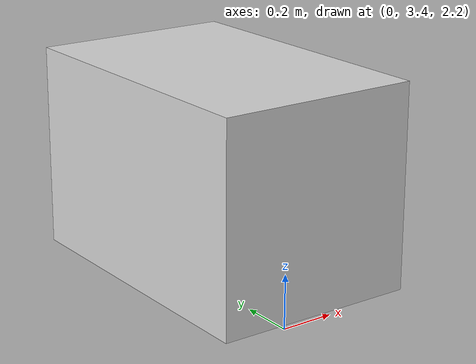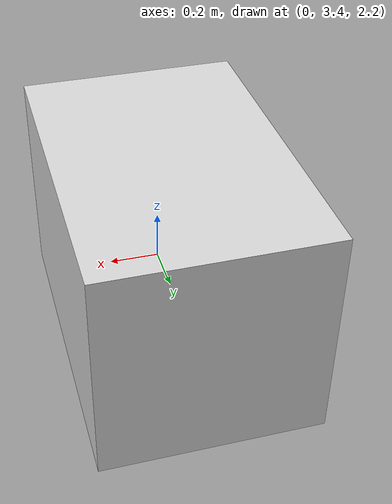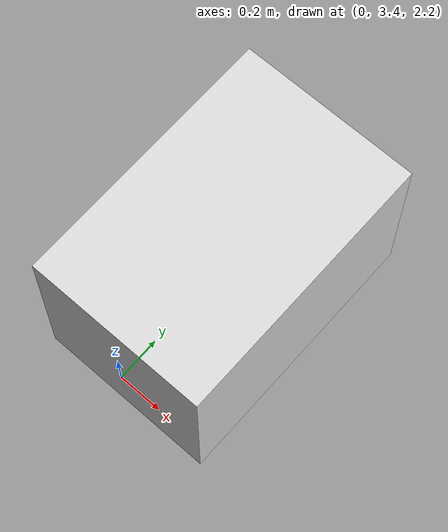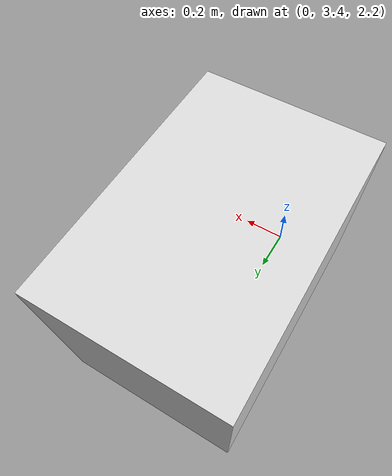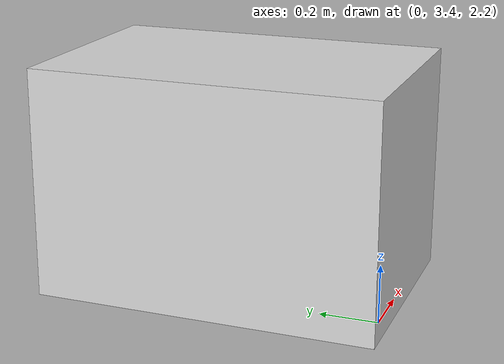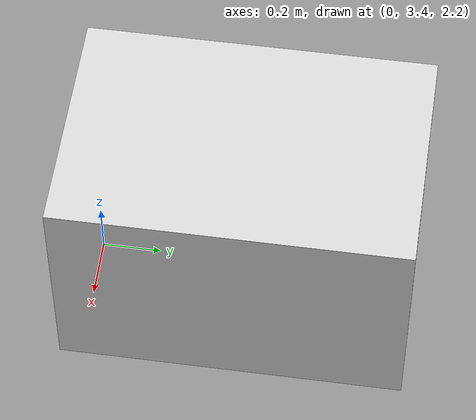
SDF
<?xml version="1.0" ?>
<!-- tmp sdf file generated from LISDF -->
<sdf version="1.9">
  <world name="tmp_world">

<model name="cabinettop_filler">
  <static>True</static>
  <pose>0.09099999815225601 3.9089999198913574 2.632999897003174 0.0 -0.0 0.0</pose>
  <link name="box">

    <inertial>
      <mass>0</mass>
      <pose>0.0 0.0 0.0 0.0 -0.0 0.0</pose>
      <inertia>
        <ixx>0</ixx>
        <ixy>0</ixy>
        <ixz>0</ixz>
        <iyy>0</iyy>
        <iyz>0</iyz>
        <izz>0</izz>
      </inertia>
    </inertial>
    <collision name="box_collision">>
      <pose>0.0 0.0 0.0 0.0 -0.0 0.0</pose>
      <geometry>
        <box>
          <size>0.7639999985694885 1.1430000066757202 0.7649999856948853</size>
        </box>
      </geometry>

    </collision>
    <visual name="box_visual">
      <pose>0.0 0.0 0.0 0.0 -0.0 0.0</pose>
      <geometry>
        <box>
          <size>0.7639999985694885 1.1430000066757202 0.7649999856948853</size>
        </box>
      </geometry>
      <material>
        <ambient>1.0 1.0 1.0 1.0</ambient>
        <diffuse>0.8500000238418579 0.8500000238418579 0.8500000238418579 1.0</diffuse>
        <specular>0.0 0.0 0.0 1.0</specular>
        <emissive>0.0 0.0 0.0 1.0</emissive>
      </material>
      <cast_shadows>True</cast_shadows>
    </visual>
    <self_collide>True</self_collide>
  </link>

</model>

  </world>
</sdf>
